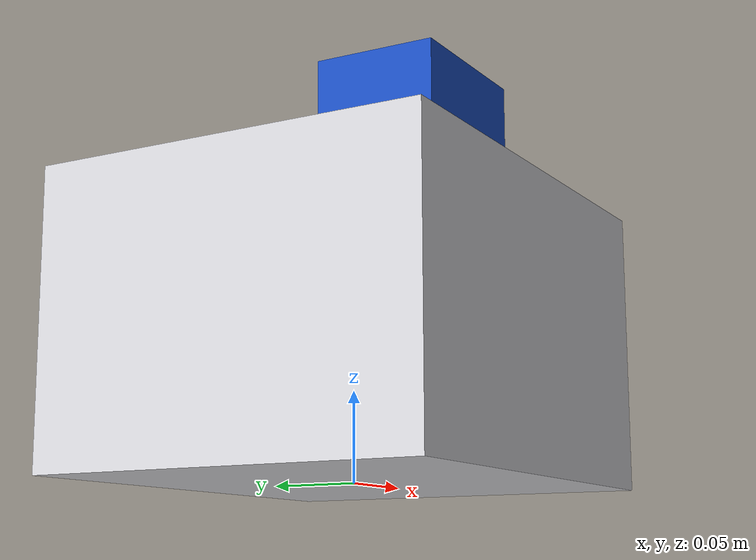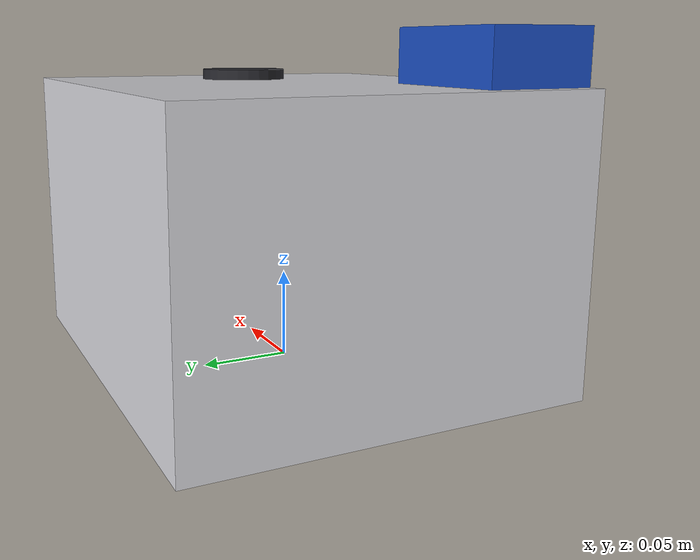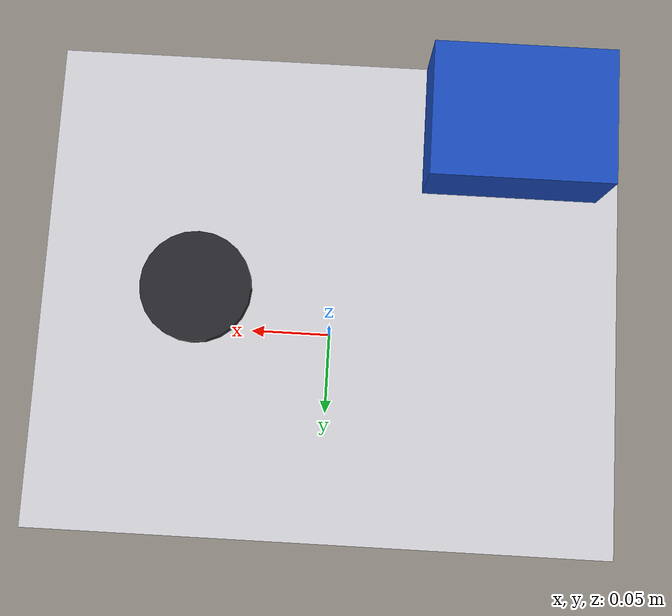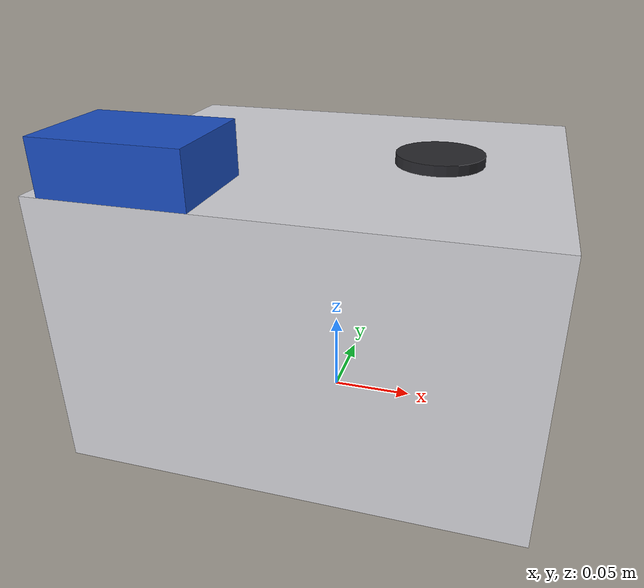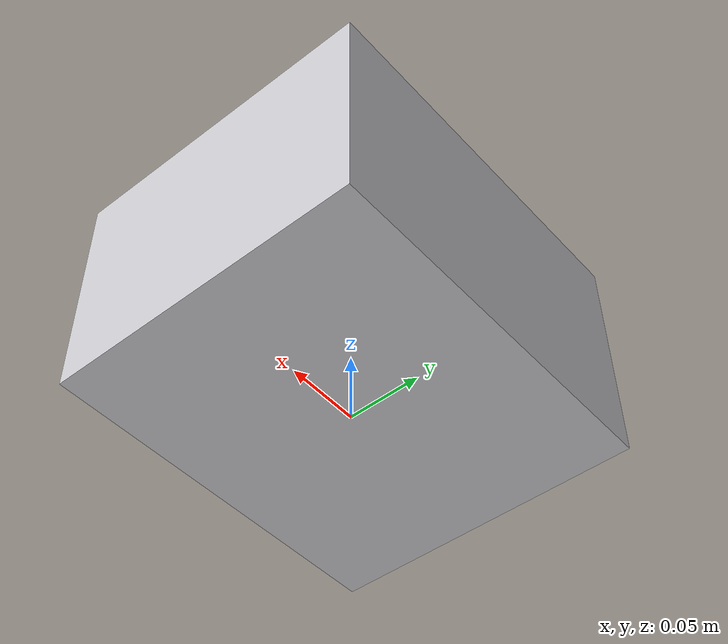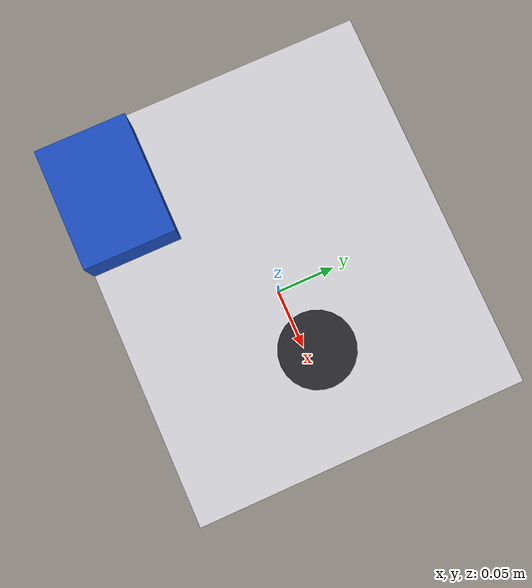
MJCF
<?xml version="1.0" encoding="utf-8"?>
<mujoco model="real_lab_loughborough_university_nmr">
  <compiler angle="radian" autolimits="true"/>
  <default>
    <default class="body"><geom contype="1" conaffinity="1"/></default>
  </default>
  <worldbody>
    <body name="base">
      <geom type="box" size="0.13 0.11 0.08" pos="0 0 0.08" rgba="0.82 0.82 0.84 1" class="body"/>
      <geom type="box" size="0.04 0.03 0.015" pos="-0.08 -0.08 0.175" rgba="0.1 0.3 0.75 1" class="body"/>
      <body name="sample_port_lid" pos="0.06 0.0 0.16">
        <joint name="sample_port_lid_joint" type="hinge" axis="1 0 0" range="0 1.5" damping="0.5" frictionloss="0.2"/>
  <geom type="cylinder" size="0.025 0.006" pos="0 0 0" rgba="0.15 0.15 0.17 1" class="body"/>
      </body>
    </body>
  </worldbody>
</mujoco>
